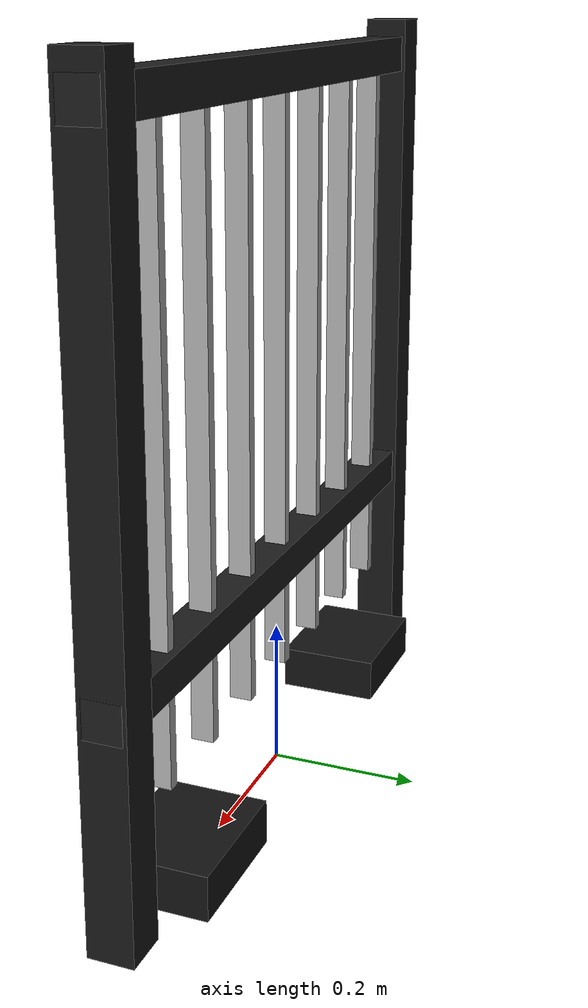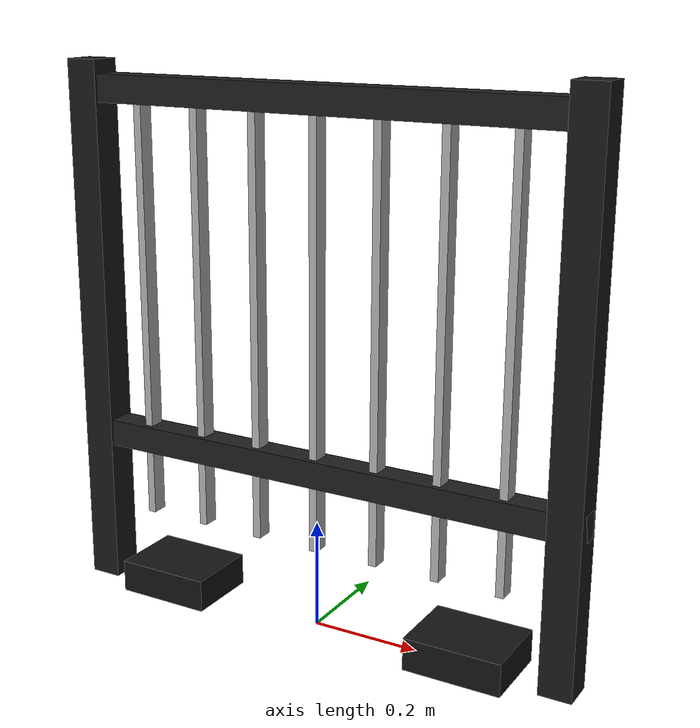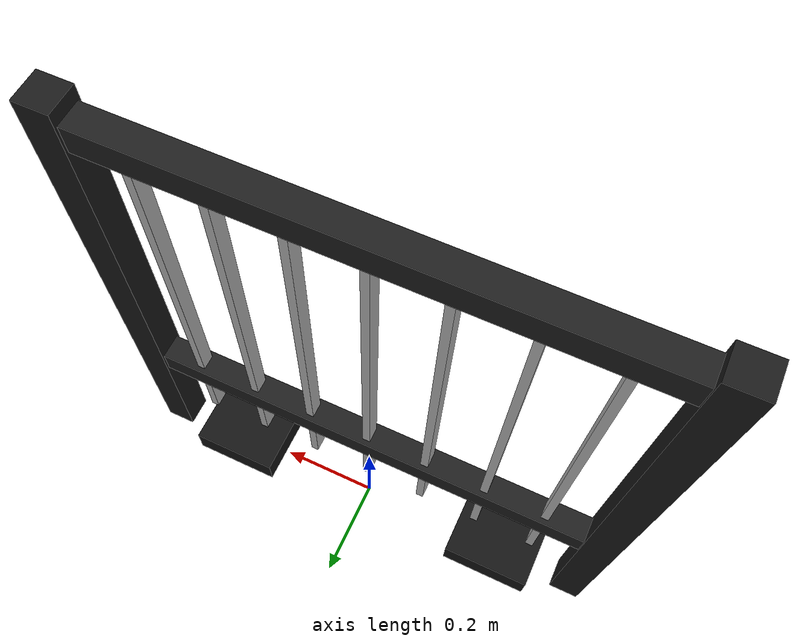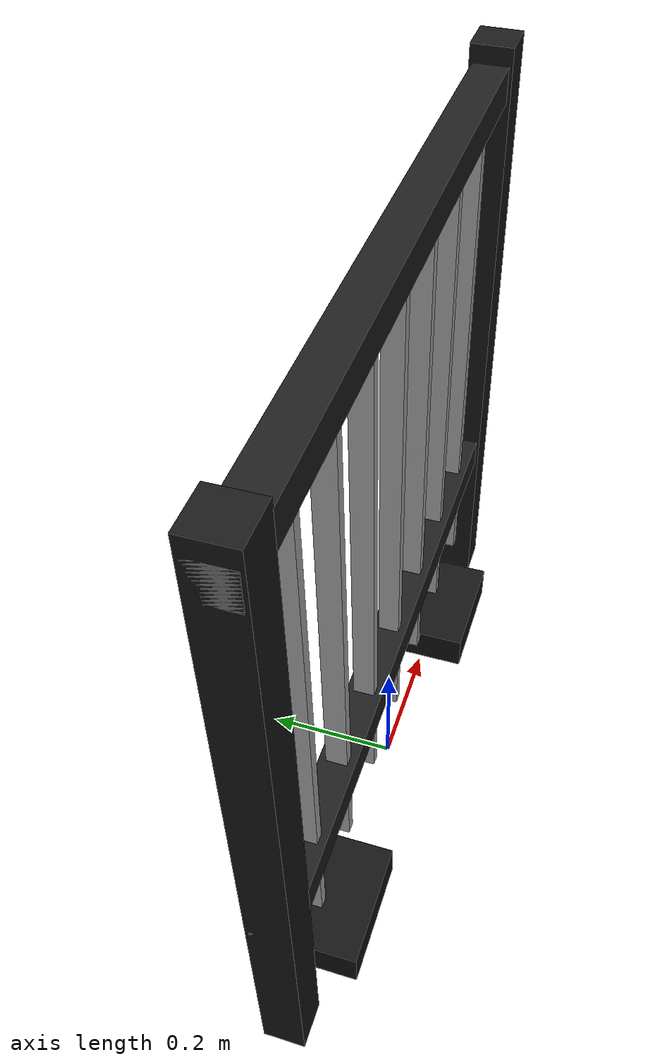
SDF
<?xml version="1.0"?>
<sdf version="1.7">
  <model name="guardrail_panel_slope_1m">
    <static>true</static>

    <link name="guardrail_link">
      <pose>0 0 0 0 0 0</pose>

      <!-- ==========================
           COLLISION (lightweight)
           ========================== -->
      <collision name="col_top_rail">
        <pose>0 0 0.95 0 0 0</pose>
        <geometry><box><size>1.00 0.05 0.05</size></box></geometry>
      </collision>

      <collision name="col_bottom_rail">
        <pose>0 0 0.30 0 0 0</pose>
        <geometry><box><size>1.00 0.05 0.05</size></box></geometry>
      </collision>

      <collision name="col_post_left">
        <pose>-0.47 0 0.50 0 0 0</pose>
        <geometry><box><size>0.06 0.06 1.00</size></box></geometry>
      </collision>

      <collision name="col_post_right">
        <pose>0.47 0 0.50 0 0 0</pose>
        <geometry><box><size>0.06 0.06 1.00</size></box></geometry>
      </collision>

      <collision name="col_foot_left">
        <pose>-0.30 0 0.03 0 0 0</pose>
        <geometry><box><size>0.18 0.14 0.06</size></box></geometry>
      </collision>

      <collision name="col_foot_right">
        <pose>0.30 0 0.03 0 0 0</pose>
        <geometry><box><size>0.18 0.14 0.06</size></box></geometry>
      </collision>

      <!-- ==========================
           VISUAL (detailed)
           ========================== -->
      <visual name="vis_top_rail">
        <pose>0 0 0.95 0 0 0</pose>
        <geometry><box><size>1.00 0.05 0.05</size></box></geometry>
        <material>
          <ambient>0.06 0.06 0.06 1</ambient>
          <diffuse>0.12 0.12 0.12 1</diffuse>
          <specular>0.20 0.20 0.20 1</specular>
        </material>
      </visual>

      <visual name="vis_bottom_rail">
        <pose>0 0 0.30 0 0 0</pose>
        <geometry><box><size>1.00 0.05 0.05</size></box></geometry>
        <material>
          <ambient>0.06 0.06 0.06 1</ambient>
          <diffuse>0.12 0.12 0.12 1</diffuse>
          <specular>0.20 0.20 0.20 1</specular>
        </material>
      </visual>

      <visual name="vis_post_left">
        <pose>-0.47 0 0.50 0 0 0</pose>
        <geometry><box><size>0.06 0.06 1.00</size></box></geometry>
        <material><diffuse>0.10 0.10 0.10 1</diffuse></material>
      </visual>

      <visual name="vis_post_right">
        <pose>0.47 0 0.50 0 0 0</pose>
        <geometry><box><size>0.06 0.06 1.00</size></box></geometry>
        <material><diffuse>0.10 0.10 0.10 1</diffuse></material>
      </visual>

      <visual name="vis_foot_left">
        <pose>-0.30 0 0.03 0 0 0</pose>
        <geometry><box><size>0.18 0.14 0.06</size></box></geometry>
        <material><diffuse>0.08 0.08 0.08 1</diffuse></material>
      </visual>

      <visual name="vis_foot_right">
        <pose>0.30 0 0.03 0 0 0</pose>
        <geometry><box><size>0.18 0.14 0.06</size></box></geometry>
        <material><diffuse>0.08 0.08 0.08 1</diffuse></material>
      </visual>

      <!-- Vertical bars (visual only) -->
      <visual name="vis_bar_01"><pose>-0.36 0 0.55 0 0 0</pose><geometry><box><size>0.015 0.03 0.80</size></box></geometry></visual>
      <visual name="vis_bar_02"><pose>-0.24 0 0.55 0 0 0</pose><geometry><box><size>0.015 0.03 0.80</size></box></geometry></visual>
      <visual name="vis_bar_03"><pose>-0.12 0 0.55 0 0 0</pose><geometry><box><size>0.015 0.03 0.80</size></box></geometry></visual>
      <visual name="vis_bar_04"><pose>0.00  0 0.55 0 0 0</pose><geometry><box><size>0.015 0.03 0.80</size></box></geometry></visual>
      <visual name="vis_bar_05"><pose>0.12  0 0.55 0 0 0</pose><geometry><box><size>0.015 0.03 0.80</size></box></geometry></visual>
      <visual name="vis_bar_06"><pose>0.24  0 0.55 0 0 0</pose><geometry><box><size>0.015 0.03 0.80</size></box></geometry></visual>
      <visual name="vis_bar_07"><pose>0.36  0 0.55 0 0 0</pose><geometry><box><size>0.015 0.03 0.80</size></box></geometry></visual>
      <visual name="vis_bar_08"><pose>0.48  0 0.55 0 0 0</pose><geometry><box><size>0.015 0.03 0.80</size></box></geometry></visual>

      <self_collide>false</self_collide>
      <enable_wind>false</enable_wind>
      <kinematic>false</kinematic>
    </link>
  </model>
</sdf>
